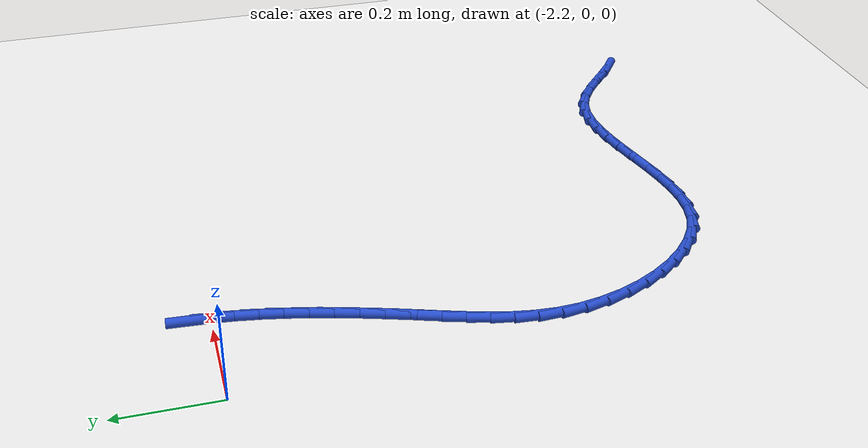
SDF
<sdf version="1.6">
 <world name="default">
  <model name="ground_plane">
   <static>1</static>
   <link name="link">
    <collision name="collision">
     <geometry><plane><normal>0 0 1</normal><size>100 100</size></plane></geometry>
     <surface><friction><ode><mu>100</mu><mu2>50</mu2></ode></friction></surface>
    </collision>
    <visual name="visual">
     <cast_shadows>0</cast_shadows>
     <geometry><plane><normal>0 0 1</normal><size>100 100</size></plane></geometry>
     <material>
      <script><uri>file://media/materials/scripts/gazebo.material</uri><name>Gazebo/WhiteGlow</name></script>
     </material>
    </visual>
   </link>
  </model>
  <model name="line">
   <link name="link_87">
    <pose>-1.975080718237816 0.042126168756700874 0.01 0 1.57 1.5118351059897275</pose>
    <collision name="collision">
     <geometry><cylinder><radius>0.01</radius><length>0.08</length></cylinder></geometry>
    </collision>
    <visual name="visual">
     <material>
      <script><name>Gazebo/Blue</name><uri>file://media/materials/scripts/gazebo.material</uri></script>
     </material>
     <geometry><cylinder><radius>0.01</radius><length>0.08</length></cylinder></geometry>
    </visual>
   </link>
   <link name="link_88">
    <pose>-1.9777155266136386 -0.0025091761976941893 0.01 0 1.57 1.4567182480084022</pose>
    <collision name="collision">
     <geometry><cylinder><radius>0.01</radius><length>0.08</length></cylinder></geometry>
    </collision>
    <visual name="visual">
     <material>
      <script><name>Gazebo/Blue</name><uri>file://media/materials/scripts/gazebo.material</uri></script>
     </material>
     <geometry><cylinder><radius>0.01</radius><length>0.08</length></cylinder></geometry>
    </visual>
   </link>
   <link name="link_89">
    <pose>-1.9828753361885163 -0.04754330775459291 0.01 0 1.57 1.4088830278106328</pose>
    <collision name="collision">
     <geometry><cylinder><radius>0.01</radius><length>0.08</length></cylinder></geometry>
    </collision>
    <visual name="visual">
     <material>
      <script><name>Gazebo/Blue</name><uri>file://media/materials/scripts/gazebo.material</uri></script>
     </material>
     <geometry><cylinder><radius>0.01</radius><length>0.08</length></cylinder></geometry>
    </visual>
   </link>
   <link name="link_90">
    <pose>-1.9902731906418683 -0.09283355909846278 0.01 0 1.57 1.3677274127227788</pose>
    <collision name="collision">
     <geometry><cylinder><radius>0.01</radius><length>0.08</length></cylinder></geometry>
    </collision>
    <visual name="visual">
     <material>
      <script><name>Gazebo/Blue</name><uri>file://media/materials/scripts/gazebo.material</uri></script>
     </material>
     <geometry><cylinder><radius>0.01</radius><length>0.08</length></cylinder></geometry>
    </visual>
   </link>
   <link name="link_91">
    <pose>-1.9996221336531166 -0.13823726341377385 0.01 0 1.57 1.3326856786531445</pose>
    <collision name="collision">
     <geometry><cylinder><radius>0.01</radius><length>0.08</length></cylinder></geometry>
    </collision>
    <visual name="visual">
     <material>
      <script><name>Gazebo/Blue</name><uri>file://media/materials/scripts/gazebo.material</uri></script>
     </material>
     <geometry><cylinder><radius>0.01</radius><length>0.08</length></cylinder></geometry>
    </visual>
   </link>
   <link name="link_92">
    <pose>-2.010635208901682 -0.18361175388499523 0.01 0 1.57 1.3032625903334054</pose>
    <collision name="collision">
     <geometry><cylinder><radius>0.01</radius><length>0.08</length></cylinder></geometry>
    </collision>
    <visual name="visual">
     <material>
      <script><name>Gazebo/Blue</name><uri>file://media/materials/scripts/gazebo.material</uri></script>
     </material>
     <geometry><cylinder><radius>0.01</radius><length>0.08</length></cylinder></geometry>
    </visual>
   </link>
   <link name="link_93">
    <pose>-2.023025460066985 -0.22881436369659616 0.01 0 1.57 1.2790523582452211</pose>
    <collision name="collision">
     <geometry><cylinder><radius>0.01</radius><length>0.08</length></cylinder></geometry>
    </collision>
    <visual name="visual">
     <material>
      <script><name>Gazebo/Blue</name><uri>file://media/materials/scripts/gazebo.material</uri></script>
     </material>
     <geometry><cylinder><radius>0.01</radius><length>0.08</length></cylinder></geometry>
    </visual>
   </link>
   <link name="link_94">
    <pose>-2.0365059308284468 -0.27370242603304673 0.01 0 1.57 1.2597492921610653</pose>
    <collision name="collision">
     <geometry><cylinder><radius>0.01</radius><length>0.08</length></cylinder></geometry>
    </collision>
    <visual name="visual">
     <material>
      <script><name>Gazebo/Blue</name><uri>file://media/materials/scripts/gazebo.material</uri></script>
     </material>
     <geometry><cylinder><radius>0.01</radius><length>0.08</length></cylinder></geometry>
    </visual>
   </link>
   <link name="link_95">
    <pose>-2.050789664865488 -0.3181332740788143 0.01 0 1.57 1.2451552691522418</pose>
    <collision name="collision">
     <geometry><cylinder><radius>0.01</radius><length>0.08</length></cylinder></geometry>
    </collision>
    <visual name="visual">
     <material>
      <script><name>Gazebo/Blue</name><uri>file://media/materials/scripts/gazebo.material</uri></script>
     </material>
     <geometry><cylinder><radius>0.01</radius><length>0.08</length></cylinder></geometry>
    </visual>
   </link>
   <link name="link_96">
    <pose>-2.06558970585753 -0.361964241018369 0.01 0 1.57 1.236135710967299</pose>
    <collision name="collision">
     <geometry><cylinder><radius>0.01</radius><length>0.08</length></cylinder></geometry>
    </collision>
    <visual name="visual">
     <material>
      <script><name>Gazebo/Blue</name><uri>file://media/materials/scripts/gazebo.material</uri></script>
     </material>
     <geometry><cylinder><radius>0.01</radius><length>0.08</length></cylinder></geometry>
    </visual>
   </link>
   <link name="link_97">
    <pose>-2.0805826651996253 -0.4050795900714274 0.01 0 1.57 1.243087441430752</pose>
    <collision name="collision">
     <geometry><cylinder><radius>0.01</radius><length>0.08</length></cylinder></geometry>
    </collision>
    <visual name="visual">
     <material>
      <script><name>Gazebo/Blue</name><uri>file://media/materials/scripts/gazebo.material</uri></script>
     </material>
     <geometry><cylinder><radius>0.01</radius><length>0.08</length></cylinder></geometry>
    </visual>
   </link>
   <link name="link_98">
    <pose>-2.095055695747366 -0.4476514646271053 0.01 0 1.57 1.2730343855157273</pose>
    <collision name="collision">
     <geometry><cylinder><radius>0.01</radius><length>0.08</length></cylinder></geometry>
    </collision>
    <visual name="visual">
     <material>
      <script><name>Gazebo/Blue</name><uri>file://media/materials/scripts/gazebo.material</uri></script>
     </material>
     <geometry><cylinder><radius>0.01</radius><length>0.08</length></cylinder></geometry>
    </visual>
   </link>
   <link name="link_99">
    <pose>-2.1080599707125285 -0.4900264396325706 0.01 0 1.57 1.3268886551919032</pose>
    <collision name="collision">
     <geometry><cylinder><radius>0.01</radius><length>0.08</length></cylinder></geometry>
    </collision>
    <visual name="visual">
     <material>
      <script><name>Gazebo/Blue</name><uri>file://media/materials/scripts/gazebo.material</uri></script>
     </material>
     <geometry><cylinder><radius>0.01</radius><length>0.08</length></cylinder></geometry>
    </visual>
   </link>
   <link name="link_100">
    <pose>-2.118643363288432 -0.5325535293443819 0.01 0 1.57 1.4047655866287647</pose>
    <collision name="collision">
     <geometry><cylinder><radius>0.01</radius><length>0.08</length></cylinder></geometry>
    </collision>
    <visual name="visual">
     <material>
      <script><name>Gazebo/Blue</name><uri>file://media/materials/scripts/gazebo.material</uri></script>
     </material>
     <geometry><cylinder><radius>0.01</radius><length>0.08</length></cylinder></geometry>
    </visual>
   </link>
   <link name="link_101">
    <pose>-2.1258537466683936 -0.5755817480191013 0.01 0 1.57 1.5051352674523615</pose>
    <collision name="collision">
     <geometry><cylinder><radius>0.01</radius><length>0.08</length></cylinder></geometry>
    </collision>
    <visual name="visual">
     <material>
      <script><name>Gazebo/Blue</name><uri>file://media/materials/scripts/gazebo.material</uri></script>
     </material>
     <geometry><cylinder><radius>0.01</radius><length>0.08</length></cylinder></geometry>
    </visual>
   </link>
   <link name="link_102">
    <pose>-2.128738994045729 -0.6194601099132884 0.01 0 1.57 -1.5182473550091664</pose>
    <collision name="collision">
     <geometry><cylinder><radius>0.01</radius><length>0.08</length></cylinder></geometry>
    </collision>
    <visual name="visual">
     <material>
      <script><name>Gazebo/Blue</name><uri>file://media/materials/scripts/gazebo.material</uri></script>
     </material>
     <geometry><cylinder><radius>0.01</radius><length>0.08</length></cylinder></geometry>
    </visual>
   </link>
   <link name="link_103">
    <pose>-2.1263691867352557 -0.6645157124132783 0.01 0 1.57 -1.3996374463185455</pose>
    <collision name="collision">
     <geometry><cylinder><radius>0.01</radius><length>0.08</length></cylinder></geometry>
    </collision>
    <visual name="visual">
     <material>
      <script><name>Gazebo/Blue</name><uri>file://media/materials/scripts/gazebo.material</uri></script>
     </material>
     <geometry><cylinder><radius>0.01</radius><length>0.08</length></cylinder></geometry>
    </visual>
   </link>
   <link name="link_104">
    <pose>-2.1184255473705624 -0.7104725264782448 0.01 0 1.57 -1.2916094236421074</pose>
    <collision name="collision">
     <geometry><cylinder><radius>0.01</radius><length>0.08</length></cylinder></geometry>
    </collision>
    <visual name="visual">
     <material>
      <script><name>Gazebo/Blue</name><uri>file://media/materials/scripts/gazebo.material</uri></script>
     </material>
     <geometry><cylinder><radius>0.01</radius><length>0.08</length></cylinder></geometry>
    </visual>
   </link>
   <link name="link_105">
    <pose>-2.105262010776127 -0.756390633247221 0.01 0 1.57 -1.1896606093698643</pose>
    <collision name="collision">
     <geometry><cylinder><radius>0.01</radius><length>0.08</length></cylinder></geometry>
    </collision>
    <visual name="visual">
     <material>
      <script><name>Gazebo/Blue</name><uri>file://media/materials/scripts/gazebo.material</uri></script>
     </material>
     <geometry><cylinder><radius>0.01</radius><length>0.08</length></cylinder></geometry>
    </visual>
   </link>
   <link name="link_106">
    <pose>-2.0872670696514066 -0.8012960091979716 0.01 0 1.57 -1.0890755755948245</pose>
    <collision name="collision">
     <geometry><cylinder><radius>0.01</radius><length>0.08</length></cylinder></geometry>
    </collision>
    <visual name="visual">
     <material>
      <script><name>Gazebo/Blue</name><uri>file://media/materials/scripts/gazebo.material</uri></script>
     </material>
     <geometry><cylinder><radius>0.01</radius><length>0.08</length></cylinder></geometry>
    </visual>
   </link>
   <link name="link_107">
    <pose>-2.064829216695857 -0.8442146308082606 0.01 0 1.57 -0.9853326285912731</pose>
    <collision name="collision">
     <geometry><cylinder><radius>0.01</radius><length>0.08</length></cylinder></geometry>
    </collision>
    <visual name="visual">
     <material>
      <script><name>Gazebo/Blue</name><uri>file://media/materials/scripts/gazebo.material</uri></script>
     </material>
     <geometry><cylinder><radius>0.01</radius><length>0.08</length></cylinder></geometry>
    </visual>
   </link>
   <link name="link_108">
    <pose>-2.038336944608934 -0.8841724745558518 0.01 0 1.57 -0.8737851931712699</pose>
    <collision name="collision">
     <geometry><cylinder><radius>0.01</radius><length>0.08</length></cylinder></geometry>
    </collision>
    <visual name="visual">
     <material>
      <script><name>Gazebo/Blue</name><uri>file://media/materials/scripts/gazebo.material</uri></script>
     </material>
     <geometry><cylinder><radius>0.01</radius><length>0.08</length></cylinder></geometry>
    </visual>
   </link>
   <link name="link_109">
    <pose>-2.0081787460900937 -0.9201955169185086 0.01 0 1.57 -0.749450523177413</pose>
    <collision name="collision">
     <geometry><cylinder><radius>0.01</radius><length>0.08</length></cylinder></geometry>
    </collision>
    <visual name="visual">
     <material>
      <script><name>Gazebo/Blue</name><uri>file://media/materials/scripts/gazebo.material</uri></script>
     </material>
     <geometry><cylinder><radius>0.01</radius><length>0.08</length></cylinder></geometry>
    </visual>
   </link>
   <link name="link_110">
    <pose>-1.9747431138387928 -0.9513097343739959 0.01 0 1.57 -0.6070985519922503</pose>
    <collision name="collision">
     <geometry><cylinder><radius>0.01</radius><length>0.08</length></cylinder></geometry>
    </collision>
    <visual name="visual">
     <material>
      <script><name>Gazebo/Blue</name><uri>file://media/materials/scripts/gazebo.material</uri></script>
     </material>
     <geometry><cylinder><radius>0.01</radius><length>0.08</length></cylinder></geometry>
    </visual>
   </link>
   <link name="link_111">
    <pose>-1.9384185405544883 -0.9765411034000762 0.01 0 1.57 -0.44203121700156434</pose>
    <collision name="collision">
     <geometry><cylinder><radius>0.01</radius><length>0.08</length></cylinder></geometry>
    </collision>
    <visual name="visual">
     <material>
      <script><name>Gazebo/Blue</name><uri>file://media/materials/scripts/gazebo.material</uri></script>
     </material>
     <geometry><cylinder><radius>0.01</radius><length>0.08</length></cylinder></geometry>
    </visual>
   </link>
   <link name="link_112">
    <pose>-1.899593518936636 -0.9949156004745134 0.01 0 1.57 -0.25616071465776646</pose>
    <collision name="collision">
     <geometry><cylinder><radius>0.01</radius><length>0.08</length></cylinder></geometry>
    </collision>
    <visual name="visual">
     <material>
      <script><name>Gazebo/Blue</name><uri>file://media/materials/scripts/gazebo.material</uri></script>
     </material>
     <geometry><cylinder><radius>0.01</radius><length>0.08</length></cylinder></geometry>
    </visual>
   </link>
   <link name="link_113">
    <pose>-1.8586538511071273 -1.0056383026901785 0.01 0 1.57 -0.08729153497382397</pose>
    <collision name="collision">
     <geometry><cylinder><radius>0.01</radius><length>0.08</length></cylinder></geometry>
    </collision>
    <visual name="visual">
     <material>
      <script><name>Gazebo/Blue</name><uri>file://media/materials/scripts/gazebo.material</uri></script>
     </material>
     <geometry><cylinder><radius>0.01</radius><length>0.08</length></cylinder></geometry>
    </visual>
   </link>
   <link name="link_114">
    <pose>-1.8159634056611595 -1.0093743112535078 0.01 0 1.57 0.04247462290531857</pose>
    <collision name="collision">
     <geometry><cylinder><radius>0.01</radius><length>0.08</length></cylinder></geometry>
    </collision>
    <visual name="visual">
     <material>
      <script><name>Gazebo/Blue</name><uri>file://media/materials/scripts/gazebo.material</uri></script>
     </material>
     <geometry><cylinder><radius>0.01</radius><length>0.08</length></cylinder></geometry>
    </visual>
   </link>
   <link name="link_115">
    <pose>-1.771875357518549 -1.0075005610915853 0.01 0 1.57 0.13438217112077902</pose>
    <collision name="collision">
     <geometry><cylinder><radius>0.01</radius><length>0.08</length></cylinder></geometry>
    </collision>
    <visual name="visual">
     <material>
      <script><name>Gazebo/Blue</name><uri>file://media/materials/scripts/gazebo.material</uri></script>
     </material>
     <geometry><cylinder><radius>0.01</radius><length>0.08</length></cylinder></geometry>
    </visual>
   </link>
   <link name="link_116">
    <pose>-1.7267428096393131 -1.0013987771976844 0.01 0 1.57 0.1928444448322167</pose>
    <collision name="collision">
     <geometry><cylinder><radius>0.01</radius><length>0.08</length></cylinder></geometry>
    </collision>
    <visual name="visual">
     <material>
      <script><name>Gazebo/Blue</name><uri>file://media/materials/scripts/gazebo.material</uri></script>
     </material>
     <geometry><cylinder><radius>0.01</radius><length>0.08</length></cylinder></geometry>
    </visual>
   </link>
   <link name="link_117">
    <pose>-1.6809188649834694 -0.9924506845650796 0.01 0 1.57 0.22185402940643978</pose>
    <collision name="collision">
     <geometry><cylinder><radius>0.01</radius><length>0.08</length></cylinder></geometry>
    </collision>
    <visual name="visual">
     <material>
      <script><name>Gazebo/Blue</name><uri>file://media/materials/scripts/gazebo.material</uri></script>
     </material>
     <geometry><cylinder><radius>0.01</radius><length>0.08</length></cylinder></geometry>
    </visual>
   </link>
   <link name="link_118">
    <pose>-1.634756626511033 -0.9820380081870439 0.01 0 1.57 0.2236307858005173</pose>
    <collision name="collision">
     <geometry><cylinder><radius>0.01</radius><length>0.08</length></cylinder></geometry>
    </collision>
    <visual name="visual">
     <material>
      <script><name>Gazebo/Blue</name><uri>file://media/materials/scripts/gazebo.material</uri></script>
     </material>
     <geometry><cylinder><radius>0.01</radius><length>0.08</length></cylinder></geometry>
    </visual>
   </link>
   <link name="link_119">
    <pose>-1.5886091971820209 -0.9715424730568512 0.01 0 1.57 0.1982516374986282</pose>
    <collision name="collision">
     <geometry><cylinder><radius>0.01</radius><length>0.08</length></cylinder></geometry>
    </collision>
    <visual name="visual">
     <material>
      <script><name>Gazebo/Blue</name><uri>file://media/materials/scripts/gazebo.material</uri></script>
     </material>
     <geometry><cylinder><radius>0.01</radius><length>0.08</length></cylinder></geometry>
    </visual>
   </link>
   <link name="link_120">
    <pose>-1.54282967995645 -0.9623458041677754 0.01 0 1.57 0.14361807612616595</pose>
    <collision name="collision">
     <geometry><cylinder><radius>0.01</radius><length>0.08</length></cylinder></geometry>
    </collision>
    <visual name="visual">
     <material>
      <script><name>Gazebo/Blue</name><uri>file://media/materials/scripts/gazebo.material</uri></script>
     </material>
     <geometry><cylinder><radius>0.01</radius><length>0.08</length></cylinder></geometry>
    </visual>
   </link>
   <link name="link_121">
    <pose>-1.4977711777943363 -0.9558297265130903 0.01 0 1.57 0.05572933860228482</pose>
    <collision name="collision">
     <geometry><cylinder><radius>0.01</radius><length>0.08</length></cylinder></geometry>
    </collision>
    <visual name="visual">
     <material>
      <script><name>Gazebo/Blue</name><uri>file://media/materials/scripts/gazebo.material</uri></script>
     </material>
     <geometry><cylinder><radius>0.01</radius><length>0.08</length></cylinder></geometry>
    </visual>
   </link>
   <link name="link_122">
    <pose>-1.4537867936556976 -0.9533759650860696 0.01 0 1.57 -0.07014972154033935</pose>
    <collision name="collision">
     <geometry><cylinder><radius>0.01</radius><length>0.08</length></cylinder></geometry>
    </collision>
    <visual name="visual">
     <material>
      <script><name>Gazebo/Blue</name><uri>file://media/materials/scripts/gazebo.material</uri></script>
     </material>
     <geometry><cylinder><radius>0.01</radius><length>0.08</length></cylinder></geometry>
    </visual>
   </link>
   <link name="link_123">
    <pose>-1.4112296305005496 -0.9563662448799868 0.01 0 1.57 -0.23623134163441015</pose>
    <collision name="collision">
     <geometry><cylinder><radius>0.01</radius><length>0.08</length></cylinder></geometry>
    </collision>
    <visual name="visual">
     <material>
      <script><name>Gazebo/Blue</name><uri>file://media/materials/scripts/gazebo.material</uri></script>
     </material>
     <geometry><cylinder><radius>0.01</radius><length>0.08</length></cylinder></geometry>
    </visual>
   </link>
   <link name="link_124">
    <pose>-1.3704527912889093 -0.9661822908881155 0.01 0 1.57 -0.4333891503739287</pose>
    <collision name="collision">
     <geometry><cylinder><radius>0.01</radius><length>0.08</length></cylinder></geometry>
    </collision>
    <visual name="visual">
     <material>
      <script><name>Gazebo/Blue</name><uri>file://media/materials/scripts/gazebo.material</uri></script>
     </material>
     <geometry><cylinder><radius>0.01</radius><length>0.08</length></cylinder></geometry>
    </visual>
   </link>
   <link name="link_125">
    <pose>-1.3317801466158665 -0.9840772615756793 0.01 0 1.57 -0.597708356694272</pose>
    <collision name="collision">
     <geometry><cylinder><radius>0.01</radius><length>0.08</length></cylinder></geometry>
    </collision>
    <visual name="visual">
     <material>
      <script><name>Gazebo/Blue</name><uri>file://media/materials/scripts/gazebo.material</uri></script>
     </material>
     <geometry><cylinder><radius>0.01</radius><length>0.08</length></cylinder></geometry>
    </visual>
   </link>
   <link name="link_126">
    <pose>-1.295032984967053 -1.0090939148113158 0.01 0 1.57 -0.6914002445256717</pose>
    <collision name="collision">
     <geometry><cylinder><radius>0.01</radius><length>0.08</length></cylinder></geometry>
    </collision>
    <visual name="visual">
     <material>
      <script><name>Gazebo/Blue</name><uri>file://media/materials/scripts/gazebo.material</uri></script>
     </material>
     <geometry><cylinder><radius>0.01</radius><length>0.08</length></cylinder></geometry>
    </visual>
   </link>
   <link name="link_127">
    <pose>-1.259609400800189 -1.0384137636756643 0.01 0 1.57 -0.724846650716805</pose>
    <collision name="collision">
     <geometry><cylinder><radius>0.01</radius><length>0.08</length></cylinder></geometry>
    </collision>
    <visual name="visual">
     <material>
      <script><name>Gazebo/Blue</name><uri>file://media/materials/scripts/gazebo.material</uri></script>
     </material>
     <geometry><cylinder><radius>0.01</radius><length>0.08</length></cylinder></geometry>
    </visual>
   </link>
   <link name="link_128">
    <pose>-1.2248942810942784 -1.0691602335890968 0.01 0 1.57 -0.7022766921841365</pose>
    <collision name="collision">
     <geometry><cylinder><radius>0.01</radius><length>0.08</length></cylinder></geometry>
    </collision>
    <visual name="visual">
     <material>
      <script><name>Gazebo/Blue</name><uri>file://media/materials/scripts/gazebo.material</uri></script>
     </material>
     <geometry><cylinder><radius>0.01</radius><length>0.08</length></cylinder></geometry>
    </visual>
   </link>
   <link name="link_129">
    <pose>-1.1902725128283258 -1.098456749971985 0.01 0 1.57 -0.617747887607404</pose>
    <collision name="collision">
     <geometry><cylinder><radius>0.01</radius><length>0.08</length></cylinder></geometry>
    </collision>
    <visual name="visual">
     <material>
      <script><name>Gazebo/Blue</name><uri>file://media/materials/scripts/gazebo.material</uri></script>
     </material>
     <geometry><cylinder><radius>0.01</radius><length>0.08</length></cylinder></geometry>
    </visual>
   </link>
  </model>
 </world>
</sdf>
